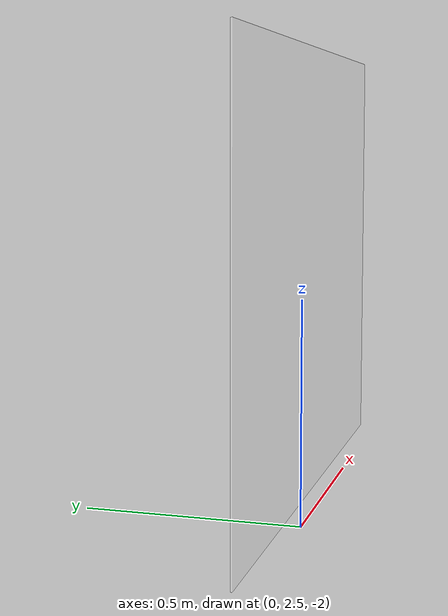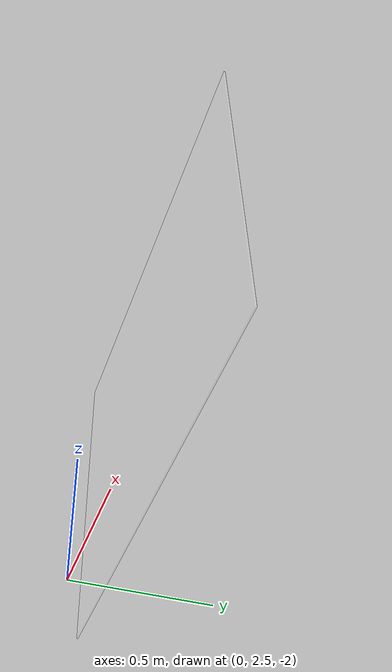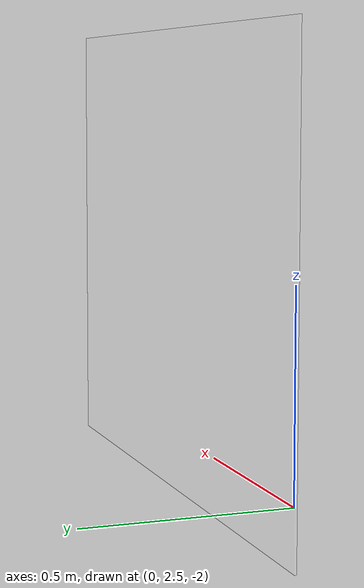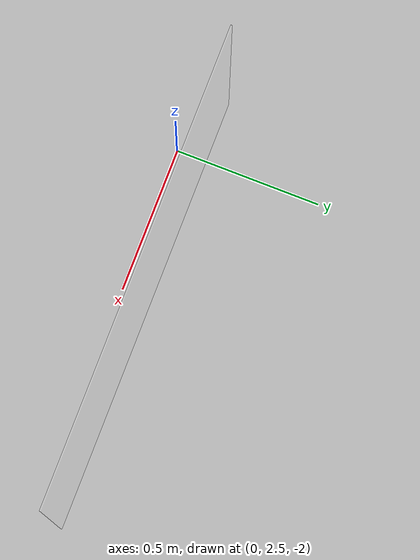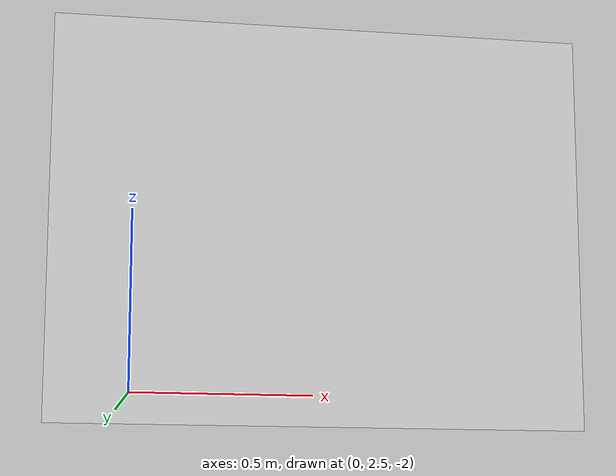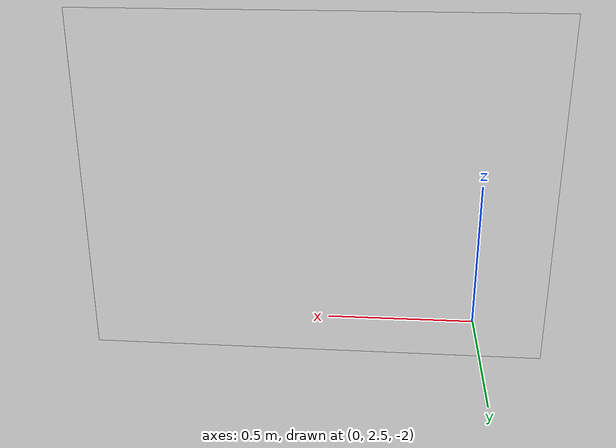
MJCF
<mujoco model="Window_8a51b29f">
  <compiler autolimits="true" boundmass="0.01" angle="radian"/>
  <default>
    <default class="/">
      <default class="__VISUAL_MJT__">
        <geom contype="0" conaffinity="0" group="0" mass="1e-08"/>
      </default>
      <default class="__STRUCTURAL_MJT__">
        <geom contype="8" conaffinity="15" group="4" friction="0.90000000000000002 0.90000000000000002 0.001" density="500" solref="0.025000000000000001 1" solimp="0.998 0.998 0.001"/>
      </default>
      <default class="__DYNAMIC_MJT__">
        <geom contype="1" conaffinity="15" group="4" friction="0.90000000000000002 0.90000000000000002 0.001" density="500" solref="0.025000000000000001 1" solimp="0.998 0.998 0.001"/>
      </default>
      <default class="__ARTICULABLE_DYNAMIC_MJT__">
        <geom contype="0" conaffinity="7" group="4" friction="0.90000000000000002 0.90000000000000002 0.001" density="500" solref="0.025000000000000001 1" solimp="0.998 0.998 0.001"/>
      </default>
    </default>
  </default>
  <asset>
    <material name="material_Glass_Detailed_Lit_Medium_Mat" class="/" specular="0.5" shininess="0.5" rgba="1 1 1 0.10000000000000001"/>
    <mesh name="Window_8a51b29f_Window_8a51b29f" class="/" file="Window_8a51b29f_Window_8a51b29f/Window_8a51b29f_Window_8a51b29f.obj" scale="1 1 1" inertia="legacy"/>
  </asset>
  <worldbody>
    <body name="Window_8a51b29f">
      <body name="Window_8a51b29f_Window_8a51b29f" pos="-0 0 0" quat="1 0 0 0">
        <geom name="Window_8a51b29f_Window_8a51b29f" class="__VISUAL_MJT__" type="mesh" material="material_Glass_Detailed_Lit_Medium_Mat" mesh="Window_8a51b29f_Window_8a51b29f"/>
        <geom name="Window_8a51b29f_Window_8a51b29f_PrimitiveCollider_0" class="__DYNAMIC_MJT__" type="box" size="0.76284825801849365 0.06363300234079361 0.45416027307510376" rgba="0 1 0 1" pos="0.54133635759353638 2.5439999103546143 -1.565281867980957" quat="0 1 0 0"/>
      </body>
    </body>
  </worldbody>
</mujoco>
